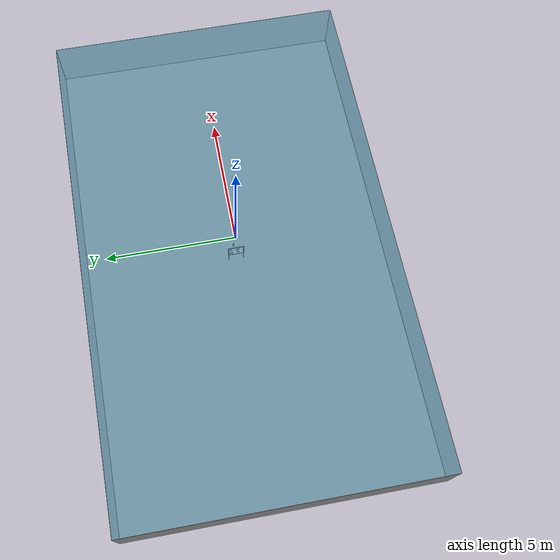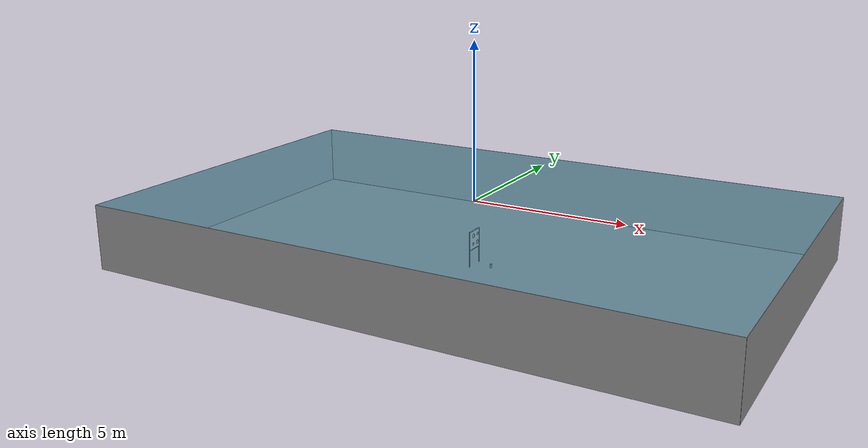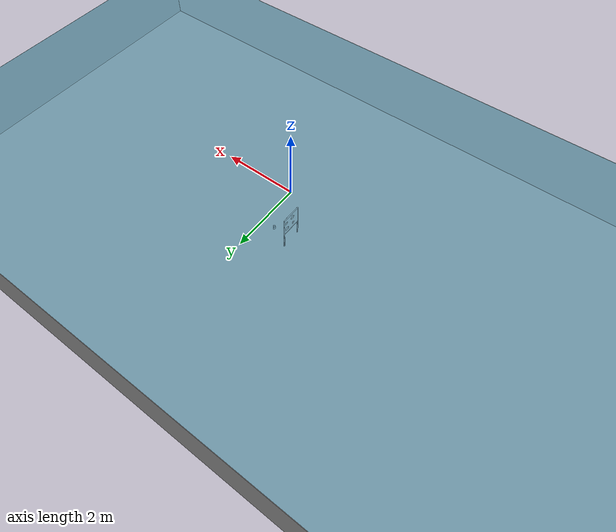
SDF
<sdf version="1.9">
 <world name="rs_task_torpedo">
  <plugin filename="gz-sim-particle-emitter-system" name="gz::sim::systems::ParticleEmitter"/>
  <plugin filename="gz-sim-physics-system" name="gz::sim::systems::Physics"/>
  <plugin filename="gz-sim-user-commands-system" name="gz::sim::systems::UserCommands"/>
  <plugin filename="gz-sim-scene-broadcaster-system" name="gz::sim::systems::SceneBroadcaster"/>
  <plugin filename="gz-sim-apply-link-wrench-system" name="gz::sim::systems::ApplyLinkWrench"/>
  <plugin filename="gz-sim-imu-system" name="gz::sim::systems::Imu"/>
  <plugin filename="gz-sim-sensors-system" name="gz::sim::systems::Sensors">
   <render_engine>ogre2</render_engine>
  </plugin>
  <plugin filename="gz-sim-dvl-system" name="gz::sim::systems::DopplerVelocityLogSystem"/>
  <plugin filename="gz-sim-buoyancy-system" name="gz::sim::systems::Buoyancy">
   <graded_buoyancy>
    <default_density>1000</default_density>
    <density_change><above_depth>0</above_depth><density>1</density></density_change>
   </graded_buoyancy>
   <enable>mongla</enable>
   <enable>payload_shot_0</enable>
   <enable>payload_shot_1</enable>
   <enable>payload_shot_2</enable>
   <enable>payload_shot_3</enable>
   <enable>payload_shot_4</enable>
   <enable>payload_shot_5</enable>
   <enable>payload_shot_6</enable>
   <enable>payload_shot_7</enable>
   <enable>payload_shot_8</enable>
   <enable>payload_shot_9</enable>
   <enable>payload_shot_10</enable>
   <enable>payload_shot_11</enable>
  </plugin>
  <physics name="default" type="dart">
   <max_step_size>0.001</max_step_size>
   <real_time_factor>1.0</real_time_factor>
   <real_time_update_rate>1000</real_time_update_rate>
   <dart>
    <collision_detector>bullet</collision_detector>
    <solver><solver_type>dantzig</solver_type></solver>
   </dart>
  </physics>
  <gravity>0 0 -9.81</gravity>
  <magnetic_field>3.9e-05 1.1e-06 2.6e-05</magnetic_field>
  <atmosphere type="adiabatic"/>
  <scene>
   <ambient>0.28 0.4 0.48 1</ambient>
   <background>0.08 0.26 0.4 1</background>
   <shadows>true</shadows>
   <fog>
    <color>0.14 0.34 0.42 1</color>
    <type>linear</type>
    <start>1.2</start>
    <end>22.0</end>
    <density>0.028</density>
   </fog>
  </scene>
  <light type="directional" name="sun">
   <pose>0 0 10 0 0 0</pose>
   <diffuse>0.48 0.52 0.56 1</diffuse>
   <specular>0.10 0.10 0.11 1</specular>
   <direction>-0.4 0.15 -0.9</direction>
  </light>
  <light type="directional" name="fill">
   <cast_shadows>false</cast_shadows>
   <pose>0 0 5 0 0 0</pose>
   <diffuse>0.22 0.28 0.34 1</diffuse>
   <specular>0.04 0.05 0.06 1</specular>
   <direction>0.3 -0.2 -1</direction>
  </light>
  <light type="directional" name="caustic_fill">
   <cast_shadows>false</cast_shadows>
   <pose>0 0 3 0 0 0</pose>
   <diffuse>0.12 0.22 0.26 1</diffuse>
   <specular>0.02 0.03 0.04 1</specular>
   <direction>0.1 0.35 -0.85</direction>
  </light>
  <model name="robosub_pool">
   <static>true</static>
   <link name="floor">
    <pose>0 0 -2.1 0 0 0</pose>
    <inertial>
     <mass>1000</mass>
     <inertia><ixx>1000</ixx><ixy>0</ixy><ixz>0</ixz><iyy>1000</iyy><iyz>0</iyz><izz>1000</izz></inertia>
    </inertial>
    <visual name="floor_visual">
     <pose>0 0 0.005 0 0 0</pose>
     <geometry><box><size>20 12 0.01</size></box></geometry>
     <material>
      <ambient>0.55 0.55 0.55 1</ambient>
      <diffuse>0.55 0.55 0.55 1</diffuse>
      <specular>0.08 0.08 0.08 1</specular>
      <emissive>0 0 0 1</emissive>
      <pbr>
       <metal>
        <albedo_map>model://robosub_textures/pool_floor.png</albedo_map>
        <metalness>0.0</metalness>
        <roughness>0.85</roughness>
       </metal>
      </pbr>
     </material>
    </visual>
    <collision name="floor_collision">
     <pose>0 0 -0.05 0 0 0</pose>
     <geometry><box><size>20 12 0.1</size></box></geometry>
    </collision>
   </link>
   <link name="wall_x_pos">
    <inertial>
     <mass>1000</mass>
     <inertia><ixx>1000</ixx><ixy>0</ixy><ixz>0</ixz><iyy>1000</iyy><iyz>0</iyz><izz>1000</izz></inertia>
    </inertial>
    <visual name="wall_x_pos_visual">
     <pose>10 0 -1.05 0 0 0</pose>
     <geometry><box><size>0.01 12 2.1</size></box></geometry>
     <material>
      <ambient>0.55 0.55 0.55 1</ambient>
      <diffuse>0.55 0.55 0.55 1</diffuse>
      <specular>0.08 0.08 0.08 1</specular>
      <emissive>0 0 0 1</emissive>
      <pbr>
       <metal>
        <albedo_map>model://robosub_textures/pool_wall_long.png</albedo_map>
        <metalness>0.0</metalness>
        <roughness>0.85</roughness>
       </metal>
      </pbr>
     </material>
    </visual>
    <collision name="wall_x_pos_collision">
     <pose>10.105 0 -1.05 0 0 0</pose>
     <geometry><box><size>0.2 12.4 2.1</size></box></geometry>
    </collision>
   </link>
   <link name="wall_x_neg">
    <inertial>
     <mass>1000</mass>
     <inertia><ixx>1000</ixx><ixy>0</ixy><ixz>0</ixz><iyy>1000</iyy><iyz>0</iyz><izz>1000</izz></inertia>
    </inertial>
    <visual name="wall_x_neg_visual">
     <pose>-10 0 -1.05 0 0 0</pose>
     <geometry><box><size>0.01 12 2.1</size></box></geometry>
     <material>
      <ambient>0.55 0.55 0.55 1</ambient>
      <diffuse>0.55 0.55 0.55 1</diffuse>
      <specular>0.08 0.08 0.08 1</specular>
      <emissive>0 0 0 1</emissive>
      <pbr>
       <metal>
        <albedo_map>model://robosub_textures/pool_wall_long.png</albedo_map>
        <metalness>0.0</metalness>
        <roughness>0.85</roughness>
       </metal>
      </pbr>
     </material>
    </visual>
    <collision name="wall_x_neg_collision">
     <pose>-10.105 0 -1.05 0 0 0</pose>
     <geometry><box><size>0.2 12.4 2.1</size></box></geometry>
    </collision>
   </link>
   <link name="wall_y_pos">
    <inertial>
     <mass>1000</mass>
     <inertia><ixx>1000</ixx><ixy>0</ixy><ixz>0</ixz><iyy>1000</iyy><iyz>0</iyz><izz>1000</izz></inertia>
    </inertial>
    <visual name="wall_y_pos_visual">
     <pose>0 6 -1.05 0 0 0</pose>
     <geometry><box><size>20 0.01 2.1</size></box></geometry>
     <material>
      <ambient>0.55 0.55 0.55 1</ambient>
      <diffuse>0.55 0.55 0.55 1</diffuse>
      <specular>0.08 0.08 0.08 1</specular>
      <emissive>0 0 0 1</emissive>
      <pbr>
       <metal>
        <albedo_map>model://robosub_textures/pool_wall_short.png</albedo_map>
        <metalness>0.0</metalness>
        <roughness>0.85</roughness>
       </metal>
      </pbr>
     </material>
    </visual>
    <collision name="wall_y_pos_collision">
     <pose>0 6.105 -1.05 0 0 0</pose>
     <geometry><box><size>20 0.2 2.1</size></box></geometry>
    </collision>
   </link>
   <link name="wall_y_neg">
    <inertial>
     <mass>1000</mass>
     <inertia><ixx>1000</ixx><ixy>0</ixy><ixz>0</ixz><iyy>1000</iyy><iyz>0</iyz><izz>1000</izz></inertia>
    </inertial>
    <visual name="wall_y_neg_visual">
     <pose>0 -6 -1.05 0 0 0</pose>
     <geometry><box><size>20 0.01 2.1</size></box></geometry>
     <material>
      <ambient>0.55 0.55 0.55 1</ambient>
      <diffuse>0.55 0.55 0.55 1</diffuse>
      <specular>0.08 0.08 0.08 1</specular>
      <emissive>0 0 0 1</emissive>
      <pbr>
       <metal>
        <albedo_map>model://robosub_textures/pool_wall_short.png</albedo_map>
        <metalness>0.0</metalness>
        <roughness>0.85</roughness>
       </metal>
      </pbr>
     </material>
    </visual>
    <collision name="wall_y_neg_collision">
     <pose>0 -6.105 -1.05 0 0 0</pose>
     <geometry><box><size>20 0.2 2.1</size></box></geometry>
    </collision>
   </link>
   <link name="water_surface">
    <inertial>
     <mass>1</mass>
     <inertia><ixx>1</ixx><ixy>0</ixy><ixz>0</ixz><iyy>1</iyy><iyz>0</iyz><izz>1</izz></inertia>
    </inertial>
    <visual name="water_surface_visual">
     <cast_shadows>false</cast_shadows>
     <transparency>0.18</transparency>
     <geometry><mesh><uri>model://robosub_meshes/meshes/water_robosub.obj</uri></mesh></geometry>
     <material>
      <ambient>0.42 0.6 0.68 1</ambient>
      <diffuse>0.42 0.6 0.68 1</diffuse>
      <specular>0.35 0.35 0.35 1</specular>
      <emissive>0.1 0.1 0.1 1</emissive>
      <pbr>
       <metal>
        <albedo_map>model://robosub_textures/water_surface.png</albedo_map>
        <metalness>0.0</metalness>
        <roughness>0.15</roughness>
       </metal>
      </pbr>
     </material>
    </visual>
   </link>
  </model>
  <model name="marine_snow">
   <static>true</static>
   <pose>0 0 -1.05 0 0 0</pose>
   <link name="link">
    <particle_emitter name="snow" type="box">
     <emitting>true</emitting>
     <size>12 12 2.1</size>
     <particle_size>0.006 0.006 0.006</particle_size>
     <lifetime>30</lifetime>
     <min_velocity>0.004</min_velocity>
     <max_velocity>0.025</max_velocity>
     <scale_rate>0</scale_rate>
     <rate>900</rate>
     <topic>marine_snow</topic>
     <material>
      <diffuse>0.80 0.84 0.80</diffuse>
      <specular>0.05 0.05 0.05</specular>
      <pbr><metal><albedo_map>model://robosub_textures/marine_snow.png</albedo_map></metal></pbr>
     </material>
    </particle_emitter>
   </link>
  </model>
  <include>
   <uri>model://robosub_torpedo_survey_repair</uri>
   <name>torpedo_board</name>
   <pose>0 0 -2.1 -0 -0 3.1416</pose>
  </include>
  <include><uri>model://robosub_pinger</uri><name>pinger_deploy</name><pose>0.6 0 -2.1 0 0 0</pose></include>
 </world>
</sdf>

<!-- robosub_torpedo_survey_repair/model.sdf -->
<sdf version="1.9">
  <model name="robosub_torpedo_survey_repair">
    <static>true</static>
    <plugin filename="gz-sim-label-system" name="gz::sim::systems::Label">
      <label>15</label>
    </plugin>
    <link name="leg_0">
      <pose>0 -0.3 0.575 0 0 0</pose>
      <inertial>
        <pose>0 0 0 0 0 0</pose>
        <mass>2</mass>
        <inertia>
          <ixx>0.220556</ixx><ixy>0</ixy><ixz>0</ixz>
          <iyy>0.220556</iyy><iyz>0</iyz>
          <izz>0.00027889</izz>
        </inertia>
      </inertial>
      <visual name="leg_0_visual">
        <pose>0 0 0 0 0 0</pose>
        <geometry><cylinder><radius>0.0167</radius><length>1.15</length></cylinder></geometry>
        <material>
          <ambient>0.62 0.63 0.65 1</ambient>
          <diffuse>0.62 0.63 0.65 1</diffuse>
          <specular>0.55 0.55 0.55 1</specular>
          <emissive>0.174 0.176 0.182 1</emissive>
          <pbr>
            <metal>
              <albedo_map>model://robosub_textures/albedo_pvc.png</albedo_map>
              <metalness>0.0</metalness>
              <roughness_map>model://robosub_textures/rough_pvc.png</roughness_map>
              <normal_map>model://robosub_textures/norm_pvc.png</normal_map>
            </metal>
          </pbr>
        </material>
      </visual>
      <collision name="leg_0_collision">
        <pose>0 0 0 0 0 0</pose>
        <geometry><cylinder><radius>0.0167</radius><length>1.15</length></cylinder></geometry>
      </collision>
    </link>
    <link name="leg_1">
      <pose>0 0.3 0.575 0 0 0</pose>
      <inertial>
        <pose>0 0 0 0 0 0</pose>
        <mass>2</mass>
        <inertia>
          <ixx>0.220556</ixx><ixy>0</ixy><ixz>0</ixz>
          <iyy>0.220556</iyy><iyz>0</iyz>
          <izz>0.00027889</izz>
        </inertia>
      </inertial>
      <visual name="leg_1_visual">
        <pose>0 0 0 0 0 0</pose>
        <geometry><cylinder><radius>0.0167</radius><length>1.15</length></cylinder></geometry>
        <material>
          <ambient>0.62 0.63 0.65 1</ambient>
          <diffuse>0.62 0.63 0.65 1</diffuse>
          <specular>0.55 0.55 0.55 1</specular>
          <emissive>0.174 0.176 0.182 1</emissive>
          <pbr>
            <metal>
              <albedo_map>model://robosub_textures/albedo_pvc.png</albedo_map>
              <metalness>0.0</metalness>
              <roughness_map>model://robosub_textures/rough_pvc.png</roughness_map>
              <normal_map>model://robosub_textures/norm_pvc.png</normal_map>
            </metal>
          </pbr>
        </material>
      </visual>
      <collision name="leg_1_collision">
        <pose>0 0 0 0 0 0</pose>
        <geometry><cylinder><radius>0.0167</radius><length>1.15</length></cylinder></geometry>
      </collision>
    </link>
    <link name="rail_top">
      <pose>0 0 1.15 1.5708 0 0</pose>
      <inertial>
        <pose>0 0 0 0 0 0</pose>
        <mass>1.2</mass>
        <inertia>
          <ixx>0.0360837</ixx><ixy>0</ixy><ixz>0</ixz>
          <iyy>0.0360837</iyy><iyz>0</iyz>
          <izz>0.000167334</izz>
        </inertia>
      </inertial>
      <visual name="rail_top_visual">
        <pose>0 0 0 0 0 0</pose>
        <geometry><cylinder><radius>0.0167</radius><length>0.6</length></cylinder></geometry>
        <material>
          <ambient>0.62 0.63 0.65 1</ambient>
          <diffuse>0.62 0.63 0.65 1</diffuse>
          <specular>0.55 0.55 0.55 1</specular>
          <emissive>0.174 0.176 0.182 1</emissive>
          <pbr>
            <metal>
              <albedo_map>model://robosub_textures/albedo_pvc.png</albedo_map>
              <metalness>0.0</metalness>
              <roughness_map>model://robosub_textures/rough_pvc.png</roughness_map>
              <normal_map>model://robosub_textures/norm_pvc.png</normal_map>
            </metal>
          </pbr>
        </material>
      </visual>
      <collision name="rail_top_collision">
        <pose>0 0 0 0 0 0</pose>
        <geometry><cylinder><radius>0.0167</radius><length>0.6</length></cylinder></geometry>
      </collision>
    </link>
    <link name="rail_bottom">
      <pose>0 0 0.55 1.5708 0 0</pose>
      <inertial>
        <pose>0 0 0 0 0 0</pose>
        <mass>1.2</mass>
        <inertia>
          <ixx>0.0360837</ixx><ixy>0</ixy><ixz>0</ixz>
          <iyy>0.0360837</iyy><iyz>0</iyz>
          <izz>0.000167334</izz>
        </inertia>
      </inertial>
      <visual name="rail_bottom_visual">
        <pose>0 0 0 0 0 0</pose>
        <geometry><cylinder><radius>0.0167</radius><length>0.6</length></cylinder></geometry>
        <material>
          <ambient>0.62 0.63 0.65 1</ambient>
          <diffuse>0.62 0.63 0.65 1</diffuse>
          <specular>0.55 0.55 0.55 1</specular>
          <emissive>0.174 0.176 0.182 1</emissive>
          <pbr>
            <metal>
              <albedo_map>model://robosub_textures/albedo_pvc.png</albedo_map>
              <metalness>0.0</metalness>
              <roughness_map>model://robosub_textures/rough_pvc.png</roughness_map>
              <normal_map>model://robosub_textures/norm_pvc.png</normal_map>
            </metal>
          </pbr>
        </material>
      </visual>
      <collision name="rail_bottom_collision">
        <pose>0 0 0 0 0 0</pose>
        <geometry><cylinder><radius>0.0167</radius><length>0.6</length></cylinder></geometry>
      </collision>
    </link>
    <link name="board">
      <pose>0 0 0.85 0 0 0</pose>
      <inertial>
        <pose>0 0 0 0 0 0</pose>
        <mass>3</mass>
        <inertia>
          <ixx>0.18</ixx><ixy>0</ixy><ixz>0</ixz>
          <iyy>0.0901</iyy><iyz>0</iyz>
          <izz>0.0901</izz>
        </inertia>
      </inertial>
      <visual name="board_visual">
        <pose>0 0 0 0 0 0</pose>
        <geometry><mesh><uri>model://robosub_meshes/meshes/torpedo_plate.obj</uri></mesh></geometry>
        <material>
          <ambient>1 1 1 1</ambient>
          <diffuse>1 1 1 1</diffuse>
          <specular>0.06 0.06 0.06 1</specular>
          <emissive>0.1 0.1 0.1 1</emissive>
          <pbr>
            <metal>
              <albedo_map>model://robosub_textures/torpedo_panel_survey_repair.png</albedo_map>
              <metalness>0.0</metalness>
              <roughness>0.6</roughness>
            </metal>
          </pbr>
        </material>
      </visual>
    </link>
    <link name="plate_c0">
      <pose>0 0 0.561538 0 0 0</pose>
      <inertial>
        <pose>0 0 0 0 0 0</pose>
        <mass>0.05</mass>
        <inertia>
          <ixx>0.00150222</ixx><ixy>0</ixy><ixz>0</ixz>
          <iyy>3.8856e-06</iyy><iyz>0</iyz>
          <izz>0.00150167</izz>
        </inertia>
      </inertial>
      <collision name="plate_c0_collision">
        <pose>0 0 0 0 0 0</pose>
        <geometry><box><size>0.02 0.6 0.0230769</size></box></geometry>
      </collision>
    </link>
    <link name="plate_c1">
      <pose>0 0 0.584615 0 0 0</pose>
      <inertial>
        <pose>0 0 0 0 0 0</pose>
        <mass>0.05</mass>
        <inertia>
          <ixx>0.00150222</ixx><ixy>0</ixy><ixz>0</ixz>
          <iyy>3.8856e-06</iyy><iyz>0</iyz>
          <izz>0.00150167</izz>
        </inertia>
      </inertial>
      <collision name="plate_c1_collision">
        <pose>0 0 0 0 0 0</pose>
        <geometry><box><size>0.02 0.6 0.0230769</size></box></geometry>
      </collision>
    </link>
    <link name="plate_c2">
      <pose>0 0 0.607692 0 0 0</pose>
      <inertial>
        <pose>0 0 0 0 0 0</pose>
        <mass>0.05</mass>
        <inertia>
          <ixx>0.00150222</ixx><ixy>0</ixy><ixz>0</ixz>
          <iyy>3.8856e-06</iyy><iyz>0</iyz>
          <izz>0.00150167</izz>
        </inertia>
      </inertial>
      <collision name="plate_c2_collision">
        <pose>0 0 0 0 0 0</pose>
        <geometry><box><size>0.02 0.6 0.0230769</size></box></geometry>
      </collision>
    </link>
    <link name="plate_c3">
      <pose>0 0 0.630769 0 0 0</pose>
      <inertial>
        <pose>0 0 0 0 0 0</pose>
        <mass>0.05</mass>
        <inertia>
          <ixx>0.00150222</ixx><ixy>0</ixy><ixz>0</ixz>
          <iyy>3.8856e-06</iyy><iyz>0</iyz>
          <izz>0.00150167</izz>
        </inertia>
      </inertial>
      <collision name="plate_c3_collision">
        <pose>0 0 0 0 0 0</pose>
        <geometry><box><size>0.02 0.6 0.0230769</size></box></geometry>
      </collision>
    </link>
    <link name="plate_c4">
      <pose>0 -0.255503 0.653846 0 0 0</pose>
      <inertial>
        <pose>0 0 0 0 0 0</pose>
        <mass>0.05</mass>
        <inertia>
          <ixx>3.52193e-05</ixx><ixy>0</ixy><ixz>0</ixz>
          <iyy>3.8856e-06</iyy><iyz>0</iyz>
          <izz>3.46671e-05</izz>
        </inertia>
      </inertial>
      <collision name="plate_c4_collision">
        <pose>0 0 0 0 0 0</pose>
        <geometry><box><size>0.02 0.0889949 0.0230769</size></box></geometry>
      </collision>
    </link>
    <link name="plate_c5">
      <pose>0 0.0725025 0.653846 0 0 0</pose>
      <inertial>
        <pose>0 0 0 0 0 0</pose>
        <mass>0.05</mass>
        <inertia>
          <ixx>0.000864804</ixx><ixy>0</ixy><ixz>0</ixz>
          <iyy>3.8856e-06</iyy><iyz>0</iyz>
          <izz>0.000864252</izz>
        </inertia>
      </inertial>
      <collision name="plate_c5_collision">
        <pose>0 0 0 0 0 0</pose>
        <geometry><box><size>0.02 0.454995 0.0230769</size></box></geometry>
      </collision>
    </link>
    <link name="plate_c6">
      <pose>0 -0.26984 0.676923 0 0 0</pose>
      <inertial>
        <pose>0 0 0 0 0 0</pose>
        <mass>0.05</mass>
        <inertia>
          <ixx>1.73791e-05</ixx><ixy>0</ixy><ixz>0</ixz>
          <iyy>3.8856e-06</iyy><iyz>0</iyz>
          <izz>1.68268e-05</izz>
        </inertia>
      </inertial>
      <collision name="plate_c6_collision">
        <pose>0 0 0 0 0 0</pose>
        <geometry><box><size>0.02 0.0603194 0.0230769</size></box></geometry>
      </collision>
    </link>
    <link name="plate_c7">
      <pose>0 -0.0347942 0.676923 0 0 0</pose>
      <inertial>
        <pose>0 0 0 0 0 0</pose>
        <mass>0.05</mass>
        <inertia>
          <ixx>0.000141833</ixx><ixy>0</ixy><ixz>0</ixz>
          <iyy>3.8856e-06</iyy><iyz>0</iyz>
          <izz>0.000141281</izz>
        </inertia>
      </inertial>
      <collision name="plate_c7_collision">
        <pose>0 0 0 0 0 0</pose>
        <geometry><box><size>0.02 0.18305 0.0230769</size></box></geometry>
      </collision>
    </link>
    <link name="plate_c8">
      <pose>0 0.202218 0.676923 0 0 0</pose>
      <inertial>
        <pose>0 0 0 0 0 0</pose>
        <mass>0.05</mass>
        <inertia>
          <ixx>0.000161575</ixx><ixy>0</ixy><ixz>0</ixz>
          <iyy>3.8856e-06</iyy><iyz>0</iyz>
          <izz>0.000161022</izz>
        </inertia>
      </inertial>
      <collision name="plate_c8_collision">
        <pose>0 0 0 0 0 0</pose>
        <geometry><box><size>0.02 0.195564 0.0230769</size></box></geometry>
      </collision>
    </link>
    <link name="plate_c9">
      <pose>0 -0.275323 0.7 0 0 0</pose>
      <inertial>
        <pose>0 0 0 0 0 0</pose>
        <mass>0.05</mass>
        <inertia>
          <ixx>1.23681e-05</ixx><ixy>0</ixy><ixz>0</ixz>
          <iyy>3.8856e-06</iyy><iyz>0</iyz>
          <izz>1.18158e-05</izz>
        </inertia>
      </inertial>
      <collision name="plate_c9_collision">
        <pose>0 0 0 0 0 0</pose>
        <geometry><box><size>0.02 0.0493539 0.0230769</size></box></geometry>
      </collision>
    </link>
    <link name="plate_c10">
      <pose>0 -0.0393639 0.7 0 0 0</pose>
      <inertial>
        <pose>0 0 0 0 0 0</pose>
        <mass>0.05</mass>
        <inertia>
          <ixx>9.84601e-05</ixx><ixy>0</ixy><ixz>0</ixz>
          <iyy>3.8856e-06</iyy><iyz>0</iyz>
          <izz>9.79078e-05</izz>
        </inertia>
      </inertial>
      <collision name="plate_c10_collision">
        <pose>0 0 0 0 0 0</pose>
        <geometry><box><size>0.02 0.15198 0.0230769</size></box></geometry>
      </collision>
    </link>
    <link name="plate_c11">
      <pose>0 0.21227 0.7 0 0 0</pose>
      <inertial>
        <pose>0 0 0 0 0 0</pose>
        <mass>0.05</mass>
        <inertia>
          <ixx>0.000130494</ixx><ixy>0</ixy><ixz>0</ixz>
          <iyy>3.8856e-06</iyy><iyz>0</iyz>
          <izz>0.000129942</izz>
        </inertia>
      </inertial>
      <collision name="plate_c11_collision">
        <pose>0 0 0 0 0 0</pose>
        <geometry><box><size>0.02 0.175459 0.0230769</size></box></geometry>
      </collision>
    </link>
    <link name="plate_c12">
      <pose>0 -0.276408 0.723077 0 0 0</pose>
      <inertial>
        <pose>0 0 0 0 0 0</pose>
        <mass>0.05</mass>
        <inertia>
          <ixx>1.14954e-05</ixx><ixy>0</ixy><ixz>0</ixz>
          <iyy>3.8856e-06</iyy><iyz>0</iyz>
          <izz>1.09432e-05</izz>
        </inertia>
      </inertial>
      <collision name="plate_c12_collision">
        <pose>0 0 0 0 0 0</pose>
        <geometry><box><size>0.02 0.0471844 0.0230769</size></box></geometry>
      </collision>
    </link>
    <link name="plate_c13">
      <pose>0 -0.0399145 0.723077 0 0 0</pose>
      <inertial>
        <pose>0 0 0 0 0 0</pose>
        <mass>0.05</mass>
        <inertia>
          <ixx>9.16935e-05</ixx><ixy>0</ixy><ixz>0</ixz>
          <iyy>3.8856e-06</iyy><iyz>0</iyz>
          <izz>9.11413e-05</izz>
        </inertia>
      </inertial>
      <collision name="plate_c13_collision">
        <pose>0 0 0 0 0 0</pose>
        <geometry><box><size>0.02 0.14654 0.0230769</size></box></geometry>
      </collision>
    </link>
    <link name="plate_c14">
      <pose>0 0.213906 0.723077 0 0 0</pose>
      <inertial>
        <pose>0 0 0 0 0 0</pose>
        <mass>0.05</mass>
        <inertia>
          <ixx>0.000125756</ixx><ixy>0</ixy><ixz>0</ixz>
          <iyy>3.8856e-06</iyy><iyz>0</iyz>
          <izz>0.000125204</izz>
        </inertia>
      </inertial>
      <collision name="plate_c14_collision">
        <pose>0 0 0 0 0 0</pose>
        <geometry><box><size>0.02 0.172189 0.0230769</size></box></geometry>
      </collision>
    </link>
    <link name="plate_c15">
      <pose>0 -0.273544 0.746154 0 0 0</pose>
      <inertial>
        <pose>0 0 0 0 0 0</pose>
        <mass>0.05</mass>
        <inertia>
          <ixx>1.3884e-05</ixx><ixy>0</ixy><ixz>0</ixz>
          <iyy>3.8856e-06</iyy><iyz>0</iyz>
          <izz>1.33317e-05</izz>
        </inertia>
      </inertial>
      <collision name="plate_c15_collision">
        <pose>0 0 0 0 0 0</pose>
        <geometry><box><size>0.02 0.0529113 0.0230769</size></box></geometry>
      </collision>
    </link>
    <link name="plate_c16">
      <pose>0 -0.0382926 0.746154 0 0 0</pose>
      <inertial>
        <pose>0 0 0 0 0 0</pose>
        <mass>0.05</mass>
        <inertia>
          <ixx>0.000110542</ixx><ixy>0</ixy><ixz>0</ixz>
          <iyy>3.8856e-06</iyy><iyz>0</iyz>
          <izz>0.00010999</izz>
        </inertia>
      </inertial>
      <collision name="plate_c16_collision">
        <pose>0 0 0 0 0 0</pose>
        <geometry><box><size>0.02 0.161237 0.0230769</size></box></geometry>
      </collision>
    </link>
    <link name="plate_c17">
      <pose>0 0.20942 0.746154 0 0 0</pose>
      <inertial>
        <pose>0 0 0 0 0 0</pose>
        <mass>0.05</mass>
        <inertia>
          <ixx>0.000138964</ixx><ixy>0</ixy><ixz>0</ixz>
          <iyy>3.8856e-06</iyy><iyz>0</iyz>
          <izz>0.000138412</izz>
        </inertia>
      </inertial>
      <collision name="plate_c17_collision">
        <pose>0 0 0 0 0 0</pose>
        <geometry><box><size>0.02 0.181159 0.0230769</size></box></geometry>
      </collision>
    </link>
    <link name="plate_c18">
      <pose>0 -0.265351 0.769231 0 0 0</pose>
      <inertial>
        <pose>0 0 0 0 0 0</pose>
        <mass>0.05</mass>
        <inertia>
          <ixx>2.22286e-05</ixx><ixy>0</ixy><ixz>0</ixz>
          <iyy>3.8856e-06</iyy><iyz>0</iyz>
          <izz>2.16763e-05</izz>
        </inertia>
      </inertial>
      <collision name="plate_c18_collision">
        <pose>0 0 0 0 0 0</pose>
        <geometry><box><size>0.02 0.0692988 0.0230769</size></box></geometry>
      </collision>
    </link>
    <link name="plate_c19">
      <pose>0 0.0823506 0.769231 0 0 0</pose>
      <inertial>
        <pose>0 0 0 0 0 0</pose>
        <mass>0.05</mass>
        <inertia>
          <ixx>0.00079174</ixx><ixy>0</ixy><ixz>0</ixz>
          <iyy>3.8856e-06</iyy><iyz>0</iyz>
          <izz>0.000791188</izz>
        </inertia>
      </inertial>
      <collision name="plate_c19_collision">
        <pose>0 0 0 0 0 0</pose>
        <geometry><box><size>0.02 0.435299 0.0230769</size></box></geometry>
      </collision>
    </link>
    <link name="plate_c20">
      <pose>0 0 0.792308 0 0 0</pose>
      <inertial>
        <pose>0 0 0 0 0 0</pose>
        <mass>0.05</mass>
        <inertia>
          <ixx>0.00150222</ixx><ixy>0</ixy><ixz>0</ixz>
          <iyy>3.8856e-06</iyy><iyz>0</iyz>
          <izz>0.00150167</izz>
        </inertia>
      </inertial>
      <collision name="plate_c20_collision">
        <pose>0 0 0 0 0 0</pose>
        <geometry><box><size>0.02 0.6 0.0230769</size></box></geometry>
      </collision>
    </link>
    <link name="plate_c21">
      <pose>0 0 0.815385 0 0 0</pose>
      <inertial>
        <pose>0 0 0 0 0 0</pose>
        <mass>0.05</mass>
        <inertia>
          <ixx>0.00150222</ixx><ixy>0</ixy><ixz>0</ixz>
          <iyy>3.8856e-06</iyy><iyz>0</iyz>
          <izz>0.00150167</izz>
        </inertia>
      </inertial>
      <collision name="plate_c21_collision">
        <pose>0 0 0 0 0 0</pose>
        <geometry><box><size>0.02 0.6 0.0230769</size></box></geometry>
      </collision>
    </link>
    <link name="plate_c22">
      <pose>0 0 0.838462 0 0 0</pose>
      <inertial>
        <pose>0 0 0 0 0 0</pose>
        <mass>0.05</mass>
        <inertia>
          <ixx>0.00150222</ixx><ixy>0</ixy><ixz>0</ixz>
          <iyy>3.8856e-06</iyy><iyz>0</iyz>
          <izz>0.00150167</izz>
        </inertia>
      </inertial>
      <collision name="plate_c22_collision">
        <pose>0 0 0 0 0 0</pose>
        <geometry><box><size>0.02 0.6 0.0230769</size></box></geometry>
      </collision>
    </link>
    <link name="plate_c23">
      <pose>0 0 0.861538 0 0 0</pose>
      <inertial>
        <pose>0 0 0 0 0 0</pose>
        <mass>0.05</mass>
        <inertia>
          <ixx>0.00150222</ixx><ixy>0</ixy><ixz>0</ixz>
          <iyy>3.8856e-06</iyy><iyz>0</iyz>
          <izz>0.00150167</izz>
        </inertia>
      </inertial>
      <collision name="plate_c23_collision">
        <pose>0 0 0 0 0 0</pose>
        <geometry><box><size>0.02 0.6 0.0230769</size></box></geometry>
      </collision>
    </link>
    <link name="plate_c24">
      <pose>0 0 0.884615 0 0 0</pose>
      <inertial>
        <pose>0 0 0 0 0 0</pose>
        <mass>0.05</mass>
        <inertia>
          <ixx>0.00150222</ixx><ixy>0</ixy><ixz>0</ixz>
          <iyy>3.8856e-06</iyy><iyz>0</iyz>
          <izz>0.00150167</izz>
        </inertia>
      </inertial>
      <collision name="plate_c24_collision">
        <pose>0 0 0 0 0 0</pose>
        <geometry><box><size>0.02 0.6 0.0230769</size></box></geometry>
      </collision>
    </link>
    <link name="plate_c25">
      <pose>0 0 0.907692 0 0 0</pose>
      <inertial>
        <pose>0 0 0 0 0 0</pose>
        <mass>0.05</mass>
        <inertia>
          <ixx>0.00150222</ixx><ixy>0</ixy><ixz>0</ixz>
          <iyy>3.8856e-06</iyy><iyz>0</iyz>
          <izz>0.00150167</izz>
        </inertia>
      </inertial>
      <collision name="plate_c25_collision">
        <pose>0 0 0 0 0 0</pose>
        <geometry><box><size>0.02 0.6 0.0230769</size></box></geometry>
      </collision>
    </link>
    <link name="plate_c26">
      <pose>0 -0.145934 0.930769 0 0 0</pose>
      <inertial>
        <pose>0 0 0 0 0 0</pose>
        <mass>0.05</mass>
        <inertia>
          <ixx>0.000397825</ixx><ixy>0</ixy><ixz>0</ixz>
          <iyy>3.8856e-06</iyy><iyz>0</iyz>
          <izz>0.000397272</izz>
        </inertia>
      </inertial>
      <collision name="plate_c26_collision">
        <pose>0 0 0 0 0 0</pose>
        <geometry><box><size>0.02 0.308132 0.0230769</size></box></geometry>
      </collision>
    </link>
    <link name="plate_c27">
      <pose>0 0.201767 0.930769 0 0 0</pose>
      <inertial>
        <pose>0 0 0 0 0 0</pose>
        <mass>0.05</mass>
        <inertia>
          <ixx>0.000163047</ixx><ixy>0</ixy><ixz>0</ixz>
          <iyy>3.8856e-06</iyy><iyz>0</iyz>
          <izz>0.000162494</izz>
        </inertia>
      </inertial>
      <collision name="plate_c27_collision">
        <pose>0 0 0 0 0 0</pose>
        <geometry><box><size>0.02 0.196465 0.0230769</size></box></geometry>
      </collision>
    </link>
    <link name="plate_c28">
      <pose>0 -0.273004 0.953846 0 0 0</pose>
      <inertial>
        <pose>0 0 0 0 0 0</pose>
        <mass>0.05</mass>
        <inertia>
          <ixx>1.43657e-05</ixx><ixy>0</ixy><ixz>0</ixz>
          <iyy>3.8856e-06</iyy><iyz>0</iyz>
          <izz>1.38134e-05</izz>
        </inertia>
      </inertial>
      <collision name="plate_c28_collision">
        <pose>0 0 0 0 0 0</pose>
        <geometry><box><size>0.02 0.0539928 0.0230769</size></box></geometry>
      </collision>
    </link>
    <link name="plate_c29">
      <pose>0 -0.0888741 0.953846 0 0 0</pose>
      <inertial>
        <pose>0 0 0 0 0 0</pose>
        <mass>0.05</mass>
        <inertia>
          <ixx>0.000110542</ixx><ixy>0</ixy><ixz>0</ixz>
          <iyy>3.8856e-06</iyy><iyz>0</iyz>
          <izz>0.00010999</izz>
        </inertia>
      </inertial>
      <collision name="plate_c29_collision">
        <pose>0 0 0 0 0 0</pose>
        <geometry><box><size>0.02 0.161237 0.0230769</size></box></geometry>
      </collision>
    </link>
    <link name="plate_c30">
      <pose>0 0.209961 0.953846 0 0 0</pose>
      <inertial>
        <pose>0 0 0 0 0 0</pose>
        <mass>0.05</mass>
        <inertia>
          <ixx>0.000137336</ixx><ixy>0</ixy><ixz>0</ixz>
          <iyy>3.8856e-06</iyy><iyz>0</iyz>
          <izz>0.000136784</izz>
        </inertia>
      </inertial>
      <collision name="plate_c30_collision">
        <pose>0 0 0 0 0 0</pose>
        <geometry><box><size>0.02 0.180078 0.0230769</size></box></geometry>
      </collision>
    </link>
    <link name="plate_c31">
      <pose>0 -0.277489 0.976923 0 0 0</pose>
      <inertial>
        <pose>0 0 0 0 0 0</pose>
        <mass>0.05</mass>
        <inertia>
          <ixx>1.06647e-05</ixx><ixy>0</ixy><ixz>0</ixz>
          <iyy>3.8856e-06</iyy><iyz>0</iyz>
          <izz>1.01125e-05</izz>
        </inertia>
      </inertial>
      <collision name="plate_c31_collision">
        <pose>0 0 0 0 0 0</pose>
        <geometry><box><size>0.02 0.0450221 0.0230769</size></box></geometry>
      </collision>
    </link>
    <link name="plate_c32">
      <pose>0 -0.0872522 0.976923 0 0 0</pose>
      <inertial>
        <pose>0 0 0 0 0 0</pose>
        <mass>0.05</mass>
        <inertia>
          <ixx>9.16935e-05</ixx><ixy>0</ixy><ixz>0</ixz>
          <iyy>3.8856e-06</iyy><iyz>0</iyz>
          <izz>9.11413e-05</izz>
        </inertia>
      </inertial>
      <collision name="plate_c32_collision">
        <pose>0 0 0 0 0 0</pose>
        <geometry><box><size>0.02 0.14654 0.0230769</size></box></geometry>
      </collision>
    </link>
    <link name="plate_c33">
      <pose>0 0.212824 0.976923 0 0 0</pose>
      <inertial>
        <pose>0 0 0 0 0 0</pose>
        <mass>0.05</mass>
        <inertia>
          <ixx>0.000128878</ixx><ixy>0</ixy><ixz>0</ixz>
          <iyy>3.8856e-06</iyy><iyz>0</iyz>
          <izz>0.000128326</izz>
        </inertia>
      </inertial>
      <collision name="plate_c33_collision">
        <pose>0 0 0 0 0 0</pose>
        <geometry><box><size>0.02 0.174351 0.0230769</size></box></geometry>
      </collision>
    </link>
    <link name="plate_c34">
      <pose>0 -0.275854 1 0 0 0</pose>
      <inertial>
        <pose>0 0 0 0 0 0</pose>
        <mass>0.05</mass>
        <inertia>
          <ixx>1.19363e-05</ixx><ixy>0</ixy><ixz>0</ixz>
          <iyy>3.8856e-06</iyy><iyz>0</iyz>
          <izz>1.13841e-05</izz>
        </inertia>
      </inertial>
      <collision name="plate_c34_collision">
        <pose>0 0 0 0 0 0</pose>
        <geometry><box><size>0.02 0.0482926 0.0230769</size></box></geometry>
      </collision>
    </link>
    <link name="plate_c35">
      <pose>0 -0.0878027 1 0 0 0</pose>
      <inertial>
        <pose>0 0 0 0 0 0</pose>
        <mass>0.05</mass>
        <inertia>
          <ixx>9.84601e-05</ixx><ixy>0</ixy><ixz>0</ixz>
          <iyy>3.8856e-06</iyy><iyz>0</iyz>
          <izz>9.79078e-05</izz>
        </inertia>
      </inertial>
      <collision name="plate_c35_collision">
        <pose>0 0 0 0 0 0</pose>
        <geometry><box><size>0.02 0.15198 0.0230769</size></box></geometry>
      </collision>
    </link>
    <link name="plate_c36">
      <pose>0 0.21174 1 0 0 0</pose>
      <inertial>
        <pose>0 0 0 0 0 0</pose>
        <mass>0.05</mass>
        <inertia>
          <ixx>0.00013205</ixx><ixy>0</ixy><ixz>0</ixz>
          <iyy>3.8856e-06</iyy><iyz>0</iyz>
          <izz>0.000131498</izz>
        </inertia>
      </inertial>
      <collision name="plate_c36_collision">
        <pose>0 0 0 0 0 0</pose>
        <geometry><box><size>0.02 0.176521 0.0230769</size></box></geometry>
      </collision>
    </link>
    <link name="plate_c37">
      <pose>0 -0.265801 1.02308 0 0 0</pose>
      <inertial>
        <pose>0 0 0 0 0 0</pose>
        <mass>0.05</mass>
        <inertia>
          <ixx>2.17116e-05</ixx><ixy>0</ixy><ixz>0</ixz>
          <iyy>3.8856e-06</iyy><iyz>0</iyz>
          <izz>2.11593e-05</izz>
        </inertia>
      </inertial>
      <collision name="plate_c37_collision">
        <pose>0 0 0 0 0 0</pose>
        <geometry><box><size>0.02 0.0683976 0.0230769</size></box></geometry>
      </collision>
    </link>
    <link name="plate_c38">
      <pose>0 -0.0923724 1.02308 0 0 0</pose>
      <inertial>
        <pose>0 0 0 0 0 0</pose>
        <mass>0.05</mass>
        <inertia>
          <ixx>0.000141833</ixx><ixy>0</ixy><ixz>0</ixz>
          <iyy>3.8856e-06</iyy><iyz>0</iyz>
          <izz>0.000141281</izz>
        </inertia>
      </inertial>
      <collision name="plate_c38_collision">
        <pose>0 0 0 0 0 0</pose>
        <geometry><box><size>0.02 0.18305 0.0230769</size></box></geometry>
      </collision>
    </link>
    <link name="plate_c39">
      <pose>0 0.206257 1.02308 0 0 0</pose>
      <inertial>
        <pose>0 0 0 0 0 0</pose>
        <mass>0.05</mass>
        <inertia>
          <ixx>0.000148682</ixx><ixy>0</ixy><ixz>0</ixz>
          <iyy>3.8856e-06</iyy><iyz>0</iyz>
          <izz>0.000148129</izz>
        </inertia>
      </inertial>
      <collision name="plate_c39_collision">
        <pose>0 0 0 0 0 0</pose>
        <geometry><box><size>0.02 0.187486 0.0230769</size></box></geometry>
      </collision>
    </link>
    <link name="plate_c40">
      <pose>0 -0.136086 1.04615 0 0 0</pose>
      <inertial>
        <pose>0 0 0 0 0 0</pose>
        <mass>0.05</mass>
        <inertia>
          <ixx>0.000450016</ixx><ixy>0</ixy><ixz>0</ixz>
          <iyy>3.8856e-06</iyy><iyz>0</iyz>
          <izz>0.000449464</izz>
        </inertia>
      </inertial>
      <collision name="plate_c40_collision">
        <pose>0 0 0 0 0 0</pose>
        <geometry><box><size>0.02 0.327828 0.0230769</size></box></geometry>
      </collision>
    </link>
    <link name="plate_c41">
      <pose>0 0.191919 1.04615 0 0 0</pose>
      <inertial>
        <pose>0 0 0 0 0 0</pose>
        <mass>0.05</mass>
        <inertia>
          <ixx>0.00019691</ixx><ixy>0</ixy><ixz>0</ixz>
          <iyy>3.8856e-06</iyy><iyz>0</iyz>
          <izz>0.000196358</izz>
        </inertia>
      </inertial>
      <collision name="plate_c41_collision">
        <pose>0 0 0 0 0 0</pose>
        <geometry><box><size>0.02 0.216162 0.0230769</size></box></geometry>
      </collision>
    </link>
    <link name="plate_c42">
      <pose>0 0 1.06923 0 0 0</pose>
      <inertial>
        <pose>0 0 0 0 0 0</pose>
        <mass>0.05</mass>
        <inertia>
          <ixx>0.00150222</ixx><ixy>0</ixy><ixz>0</ixz>
          <iyy>3.8856e-06</iyy><iyz>0</iyz>
          <izz>0.00150167</izz>
        </inertia>
      </inertial>
      <collision name="plate_c42_collision">
        <pose>0 0 0 0 0 0</pose>
        <geometry><box><size>0.02 0.6 0.0230769</size></box></geometry>
      </collision>
    </link>
    <link name="plate_c43">
      <pose>0 0 1.09231 0 0 0</pose>
      <inertial>
        <pose>0 0 0 0 0 0</pose>
        <mass>0.05</mass>
        <inertia>
          <ixx>0.00150222</ixx><ixy>0</ixy><ixz>0</ixz>
          <iyy>3.8856e-06</iyy><iyz>0</iyz>
          <izz>0.00150167</izz>
        </inertia>
      </inertial>
      <collision name="plate_c43_collision">
        <pose>0 0 0 0 0 0</pose>
        <geometry><box><size>0.02 0.6 0.0230769</size></box></geometry>
      </collision>
    </link>
    <link name="plate_c44">
      <pose>0 0 1.11538 0 0 0</pose>
      <inertial>
        <pose>0 0 0 0 0 0</pose>
        <mass>0.05</mass>
        <inertia>
          <ixx>0.00150222</ixx><ixy>0</ixy><ixz>0</ixz>
          <iyy>3.8856e-06</iyy><iyz>0</iyz>
          <izz>0.00150167</izz>
        </inertia>
      </inertial>
      <collision name="plate_c44_collision">
        <pose>0 0 0 0 0 0</pose>
        <geometry><box><size>0.02 0.6 0.0230769</size></box></geometry>
      </collision>
    </link>
    <link name="plate_c45">
      <pose>0 0 1.13846 0 0 0</pose>
      <inertial>
        <pose>0 0 0 0 0 0</pose>
        <mass>0.05</mass>
        <inertia>
          <ixx>0.00150222</ixx><ixy>0</ixy><ixz>0</ixz>
          <iyy>3.8856e-06</iyy><iyz>0</iyz>
          <izz>0.00150167</izz>
        </inertia>
      </inertial>
      <collision name="plate_c45_collision">
        <pose>0 0 0 0 0 0</pose>
        <geometry><box><size>0.02 0.6 0.0230769</size></box></geometry>
      </collision>
    </link>
  </model>
</sdf>

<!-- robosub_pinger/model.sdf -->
<sdf version="1.9">
  <model name="robosub_pinger">
    <static>true</static>
    <plugin filename="gz-sim-label-system" name="gz::sim::systems::Label">
      <label>20</label>
    </plugin>
    <link name="body">
      <pose>0 0 0.06 0 0 0</pose>
      <inertial>
        <pose>0 0 0 0 0 0</pose>
        <mass>0.5</mass>
        <inertia>
          <ixx>0.000753125</ixx><ixy>0</ixy><ixz>0</ixz>
          <iyy>0.000753125</iyy><iyz>0</iyz>
          <izz>0.00030625</izz>
        </inertia>
      </inertial>
      <visual name="body_visual">
        <pose>0 0 0 0 0 0</pose>
        <geometry><cylinder><radius>0.035</radius><length>0.12</length></cylinder></geometry>
        <material>
          <ambient>0.15 0.15 0.17 1</ambient>
          <diffuse>0.15 0.15 0.17 1</diffuse>
          <specular>0.14 0.14 0.14 1</specular>
          <emissive>0.1 0.1 0.1 1</emissive>
          <pbr>
            <metal>
              <albedo_map>model://robosub_textures/albedo_plastic.png</albedo_map>
              <metalness>0.0</metalness>
              <roughness_map>model://robosub_textures/rough_plastic.png</roughness_map>
              <normal_map>model://robosub_textures/norm_plastic.png</normal_map>
            </metal>
          </pbr>
        </material>
      </visual>
      <collision name="body_collision">
        <pose>0 0 0 0 0 0</pose>
        <geometry><cylinder><radius>0.035</radius><length>0.12</length></cylinder></geometry>
      </collision>
    </link>
  </model>
</sdf>
